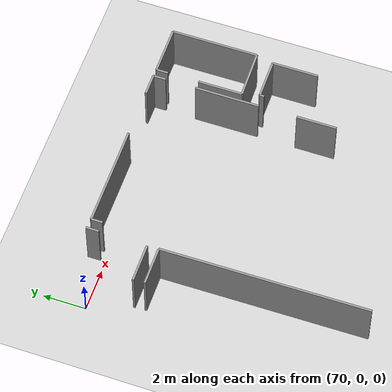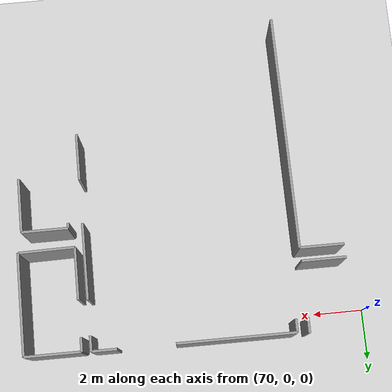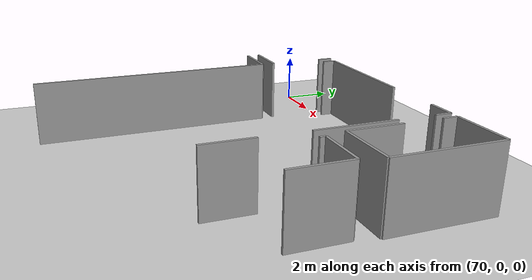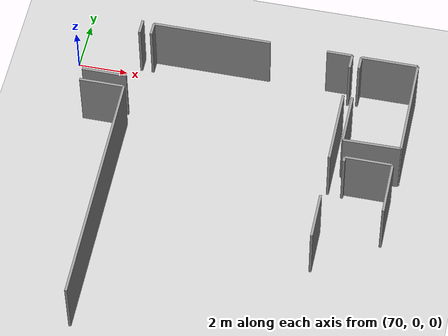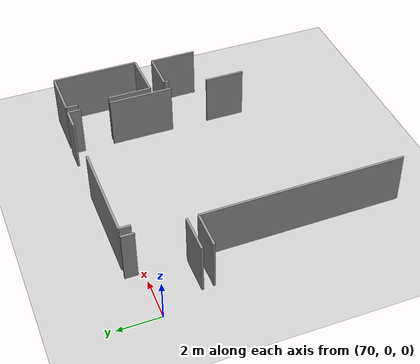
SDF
<sdf version="1.6">
 <world name="default">
  <model name="ground_plane">
   <static>1</static>
   <link name="link">
    <collision name="collision">
     <geometry><plane><normal>0 0 1</normal><size>100 100</size></plane></geometry>
     <surface><friction><ode><mu>100</mu><mu2>50</mu2></ode></friction></surface>
    </collision>
    <visual name="visual">
     <cast_shadows>0</cast_shadows>
     <geometry><plane><normal>0 0 1</normal><size>100 100</size></plane></geometry>
     <material>
      <script><uri>file://media/materials/scripts/gazebo.material</uri><name>Gazebo/Grey</name></script>
     </material>
    </visual>
   </link>
  </model>
  <model name="0510045906_A_40_1_104">
   <static>1</static>
   <link name="Wall_3">
    <collision name="Wall_3_Collision">
     <geometry><box><size>0.60663386764 0.1 2.5</size></box></geometry>
     <pose>0.30331693382 0 1.25 0 0 0</pose>
    </collision>
    <visual name="Wall_3_Visual">
     <pose>0.30331693382 0 1.25 0 0 0</pose>
     <geometry><box><size>0.60663386764 0.1 2.5</size></box></geometry>
     <material>
      <script><uri>file://media/materials/scripts/gazebo.material</uri><name>Gazebo/Grey</name></script>
      <ambient>1 1 1 1</ambient>
     </material>
    </visual>
    <pose>156.246437073 -11.3094429456 0 0 0 -1.57079632679</pose>
   </link>
   <link name="Wall_4">
    <collision name="Wall_4_Collision">
     <geometry><box><size>1.79323916839 0.1 2.5</size></box></geometry>
     <pose>0.896619584193 0 1.25 0 0 0</pose>
    </collision>
    <visual name="Wall_4_Visual">
     <pose>0.896619584193 0 1.25 0 0 0</pose>
     <geometry><box><size>1.79323916839 0.1 2.5</size></box></geometry>
     <material>
      <script><uri>file://media/materials/scripts/gazebo.material</uri><name>Gazebo/Grey</name></script>
      <ambient>1 1 1 1</ambient>
     </material>
    </visual>
    <pose>156.246437073 -14.1445484844 0 0 0 3.14159265359</pose>
   </link>
   <link name="Wall_172">
    <collision name="Wall_172_Collision">
     <geometry><box><size>1.78511347405 0.1 2.5</size></box></geometry>
     <pose>0.892556737026 0 1.25 0 0 0</pose>
    </collision>
    <visual name="Wall_172_Visual">
     <pose>0.892556737026 0 1.25 0 0 0</pose>
     <geometry><box><size>1.78511347405 0.1 2.5</size></box></geometry>
     <material>
      <script><uri>file://media/materials/scripts/gazebo.material</uri><name>Gazebo/Grey</name></script>
      <ambient>1 1 1 1</ambient>
     </material>
    </visual>
    <pose>154.481891763 -14.6747500397 0 0 0 0.0</pose>
   </link>
   <link name="Wall_173">
    <collision name="Wall_173_Collision">
     <geometry><box><size>9.62052157302 0.1 2.5</size></box></geometry>
     <pose>4.81026078651 0 1.25 0 0 0</pose>
    </collision>
    <visual name="Wall_173_Visual">
     <pose>4.81026078651 0 1.25 0 0 0</pose>
     <geometry><box><size>9.62052157302 0.1 2.5</size></box></geometry>
     <material>
      <script><uri>file://media/materials/scripts/gazebo.material</uri><name>Gazebo/Grey</name></script>
      <ambient>1 1 1 1</ambient>
     </material>
    </visual>
    <pose>156.267005237 -14.6747500397 0 0 0 -1.56100384583</pose>
   </link>
   <link name="Wall_176">
    <collision name="Wall_176_Collision">
     <geometry><box><size>0.529947627361 0.1 2.5</size></box></geometry>
     <pose>0.26497381368 0 1.25 0 0 0</pose>
    </collision>
    <visual name="Wall_176_Visual">
     <pose>0.26497381368 0 1.25 0 0 0</pose>
     <geometry><box><size>0.529947627361 0.1 2.5</size></box></geometry>
     <material>
      <script><uri>file://media/materials/scripts/gazebo.material</uri><name>Gazebo/Grey</name></script>
      <ambient>1 1 1 1</ambient>
     </material>
    </visual>
    <pose>156.717727345 -11.9112521822 0 0 0 1.57079632679</pose>
   </link>
   <link name="Wall_177">
    <collision name="Wall_177_Collision">
     <geometry><box><size>4.74312013966 0.1 2.5</size></box></geometry>
     <pose>2.37156006983 0 1.25 0 0 0</pose>
    </collision>
    <visual name="Wall_177_Visual">
     <pose>2.37156006983 0 1.25 0 0 0</pose>
     <geometry><box><size>4.74312013966 0.1 2.5</size></box></geometry>
     <material>
      <script><uri>file://media/materials/scripts/gazebo.material</uri><name>Gazebo/Grey</name></script>
      <ambient>1 1 1 1</ambient>
     </material>
    </visual>
    <pose>156.717727345 -11.3813045548 0 0 0 0.0</pose>
   </link>
   <link name="Wall_178">
    <collision name="Wall_178_Collision">
     <geometry><box><size>1.01190287256 0.1 2.5</size></box></geometry>
     <pose>0.50595143628 0 1.25 0 0 0</pose>
    </collision>
    <visual name="Wall_178_Visual">
     <pose>0.50595143628 0 1.25 0 0 0</pose>
     <geometry><box><size>1.01190287256 0.1 2.5</size></box></geometry>
     <material>
      <script><uri>file://media/materials/scripts/gazebo.material</uri><name>Gazebo/Grey</name></script>
      <ambient>1 1 1 1</ambient>
     </material>
    </visual>
    <pose>163.741628313 -11.3813045548 0 0 0 0.0</pose>
   </link>
   <link name="Wall_179">
    <collision name="Wall_179_Collision">
     <geometry><box><size>0.605872083796 0.1 2.5</size></box></geometry>
     <pose>0.302936041898 0 1.25 0 0 0</pose>
    </collision>
    <visual name="Wall_179_Visual">
     <pose>0.302936041898 0 1.25 0 0 0</pose>
     <geometry><box><size>0.605872083796 0.1 2.5</size></box></geometry>
     <material>
      <script><uri>file://media/materials/scripts/gazebo.material</uri><name>Gazebo/Grey</name></script>
      <ambient>1 1 1 1</ambient>
     </material>
    </visual>
    <pose>164.753531186 -11.3813045548 0 0 0 -1.57079632679</pose>
   </link>
   <link name="Wall_180">
    <collision name="Wall_180_Collision">
     <geometry><box><size>3.03672432947 0.1 2.5</size></box></geometry>
     <pose>1.51836216474 0 1.25 0 0 0</pose>
    </collision>
    <visual name="Wall_180_Visual">
     <pose>1.51836216474 0 1.25 0 0 0</pose>
     <geometry><box><size>3.03672432947 0.1 2.5</size></box></geometry>
     <material>
      <script><uri>file://media/materials/scripts/gazebo.material</uri><name>Gazebo/Grey</name></script>
      <ambient>1 1 1 1</ambient>
     </material>
    </visual>
    <pose>164.753531186 -13.3980003174 0 0 0 -1.57079632679</pose>
   </link>
   <link name="Wall_181">
    <collision name="Wall_181_Collision">
     <geometry><box><size>1.87728931916 0.1 2.5</size></box></geometry>
     <pose>0.938644659578 0 1.25 0 0 0</pose>
    </collision>
    <visual name="Wall_181_Visual">
     <pose>0.938644659578 0 1.25 0 0 0</pose>
     <geometry><box><size>1.87728931916 0.1 2.5</size></box></geometry>
     <material>
      <script><uri>file://media/materials/scripts/gazebo.material</uri><name>Gazebo/Grey</name></script>
      <ambient>1 1 1 1</ambient>
     </material>
    </visual>
    <pose>164.753531186 -18.2284716712 0 0 0 -1.57079632679</pose>
   </link>
   <link name="Wall_184">
    <collision name="Wall_184_Collision">
     <geometry><box><size>2.0761149024 0.1 2.5</size></box></geometry>
     <pose>1.0380574512 0 1.25 0 0 0</pose>
    </collision>
    <visual name="Wall_184_Visual">
     <pose>1.0380574512 0 1.25 0 0 0</pose>
     <geometry><box><size>2.0761149024 0.1 2.5</size></box></geometry>
     <material>
      <script><uri>file://media/materials/scripts/gazebo.material</uri><name>Gazebo/Grey</name></script>
      <ambient>1 1 1 1</ambient>
     </material>
    </visual>
    <pose>165.119695286 -15.5056022854 0 0 0 1.57079632679</pose>
   </link>
   <link name="Wall_185">
    <collision name="Wall_185_Collision">
     <geometry><box><size>0.559911125218 0.1 2.5</size></box></geometry>
     <pose>0.279955562609 0 1.25 0 0 0</pose>
    </collision>
    <visual name="Wall_185_Visual">
     <pose>0.279955562609 0 1.25 0 0 0</pose>
     <geometry><box><size>0.559911125218 0.1 2.5</size></box></geometry>
     <material>
      <script><uri>file://media/materials/scripts/gazebo.material</uri><name>Gazebo/Grey</name></script>
      <ambient>1 1 1 1</ambient>
     </material>
    </visual>
    <pose>165.119695286 -11.9600063482 0 0 0 1.57079632679</pose>
   </link>
   <link name="Wall_186">
    <collision name="Wall_186_Collision">
     <geometry><box><size>2.25843516902 0.1 2.5</size></box></geometry>
     <pose>1.12921758451 0 1.25 0 0 0</pose>
    </collision>
    <visual name="Wall_186_Visual">
     <pose>1.12921758451 0 1.25 0 0 0</pose>
     <geometry><box><size>2.25843516902 0.1 2.5</size></box></geometry>
     <material>
      <script><uri>file://media/materials/scripts/gazebo.material</uri><name>Gazebo/Grey</name></script>
      <ambient>1 1 1 1</ambient>
     </material>
    </visual>
    <pose>165.119695286 -11.400095223 0 0 0 0.0</pose>
   </link>
   <link name="Wall_187">
    <collision name="Wall_187_Collision">
     <geometry><box><size>4.07148071735 0.1 2.5</size></box></geometry>
     <pose>2.03574035867 0 1.25 0 0 0</pose>
    </collision>
    <visual name="Wall_187_Visual">
     <pose>2.03574035867 0 1.25 0 0 0</pose>
     <geometry><box><size>4.07148071735 0.1 2.5</size></box></geometry>
     <material>
      <script><uri>file://media/materials/scripts/gazebo.material</uri><name>Gazebo/Grey</name></script>
      <ambient>1 1 1 1</ambient>
     </material>
    </visual>
    <pose>167.378130455 -11.400095223 0 0 0 -1.57079632679</pose>
   </link>
   <link name="Wall_188">
    <collision name="Wall_188_Collision">
     <geometry><box><size>2.25869148066 0.1 2.5</size></box></geometry>
     <pose>1.12934574033 0 1.25 0 0 0</pose>
    </collision>
    <visual name="Wall_188_Visual">
     <pose>1.12934574033 0 1.25 0 0 0</pose>
     <geometry><box><size>2.25869148066 0.1 2.5</size></box></geometry>
     <material>
      <script><uri>file://media/materials/scripts/gazebo.material</uri><name>Gazebo/Grey</name></script>
      <ambient>1 1 1 1</ambient>
     </material>
    </visual>
    <pose>167.378130455 -15.4715759403 0 0 0 -3.12652745657</pose>
   </link>
   <link name="Wall_190">
    <collision name="Wall_190_Collision">
     <geometry><box><size>0.20999841295 0.1 2.5</size></box></geometry>
     <pose>0.104999206475 0 1.25 0 0 0</pose>
    </collision>
    <visual name="Wall_190_Visual">
     <pose>0.104999206475 0 1.25 0 0 0</pose>
     <geometry><box><size>0.20999841295 0.1 2.5</size></box></geometry>
     <material>
      <script><uri>file://media/materials/scripts/gazebo.material</uri><name>Gazebo/Grey</name></script>
      <ambient>1 1 1 1</ambient>
     </material>
    </visual>
    <pose>165.327916204 -16.502523409 0 0 0 1.57079632679</pose>
   </link>
   <link name="Wall_191">
    <collision name="Wall_191_Collision">
     <geometry><box><size>1.85976829075 0.1 2.5</size></box></geometry>
     <pose>0.929884145374 0 1.25 0 0 0</pose>
    </collision>
    <visual name="Wall_191_Visual">
     <pose>0.929884145374 0 1.25 0 0 0</pose>
     <geometry><box><size>1.85976829075 0.1 2.5</size></box></geometry>
     <material>
      <script><uri>file://media/materials/scripts/gazebo.material</uri><name>Gazebo/Grey</name></script>
      <ambient>1 1 1 1</ambient>
     </material>
    </visual>
    <pose>165.327916204 -16.292524996 0 0 0 0.0</pose>
   </link>
   <link name="Wall_192">
    <collision name="Wall_192_Collision">
     <geometry><box><size>2.16727503571 0.1 2.5</size></box></geometry>
     <pose>1.08363751785 0 1.25 0 0 0</pose>
    </collision>
    <visual name="Wall_192_Visual">
     <pose>1.08363751785 0 1.25 0 0 0</pose>
     <geometry><box><size>2.16727503571 0.1 2.5</size></box></geometry>
     <material>
      <script><uri>file://media/materials/scripts/gazebo.material</uri><name>Gazebo/Grey</name></script>
      <ambient>1 1 1 1</ambient>
     </material>
    </visual>
    <pose>167.187684495 -16.292524996 0 0 0 -1.57079632679</pose>
   </link>
   <pose>-83.7 12.1648944612 0 0 0 0</pose>
  </model>
 </world>
</sdf>
